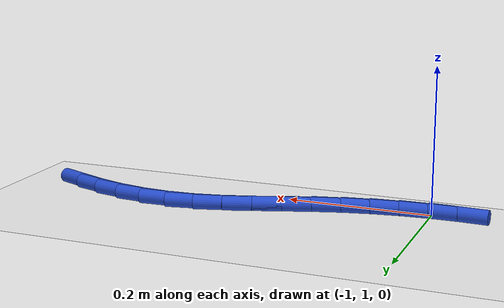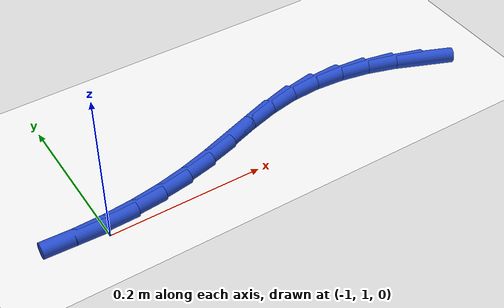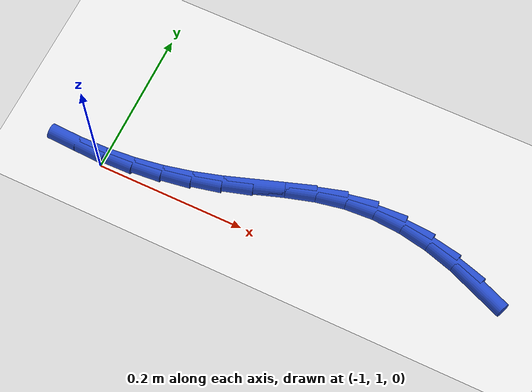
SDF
<sdf version="1.6">
 <world name="default">
  <model name="ground_plane">
   <static>1</static>
   <link name="link">
    <collision name="collision">
     <geometry><plane><normal>0 0 1</normal><size>100 100</size></plane></geometry>
     <surface><friction><ode><mu>100</mu><mu2>50</mu2></ode></friction></surface>
    </collision>
    <visual name="visual">
     <cast_shadows>0</cast_shadows>
     <geometry><plane><normal>0 0 1</normal><size>100 100</size></plane></geometry>
     <material>
      <script><uri>file://media/materials/scripts/gazebo.material</uri><name>Gazebo/WhiteGlow</name></script>
     </material>
    </visual>
   </link>
  </model>
  <model name="line">
   <link name="link_30">
    <pose>-0.4996237857712698 1.0510282119593914 0.01 0 1.57 -0.38338110124971014</pose>
    <collision name="collision">
     <geometry><cylinder><radius>0.01</radius><length>0.08</length></cylinder></geometry>
    </collision>
    <visual name="visual">
     <material>
      <script><name>Gazebo/Blue</name><uri>file://media/materials/scripts/gazebo.material</uri></script>
     </material>
     <geometry><cylinder><radius>0.01</radius><length>0.08</length></cylinder></geometry>
    </visual>
   </link>
   <link name="link_31">
    <pose>-0.5377718935952589 1.0664148136202494 0.01 0 1.57 -0.2894873153356461</pose>
    <collision name="collision">
     <geometry><cylinder><radius>0.01</radius><length>0.08</length></cylinder></geometry>
    </collision>
    <visual name="visual">
     <material>
      <script><name>Gazebo/Blue</name><uri>file://media/materials/scripts/gazebo.material</uri></script>
     </material>
     <geometry><cylinder><radius>0.01</radius><length>0.08</length></cylinder></geometry>
    </visual>
   </link>
   <link name="link_32">
    <pose>-0.5765033535600577 1.0779511545248635 0.01 0 1.57 -0.18484051677864688</pose>
    <collision name="collision">
     <geometry><cylinder><radius>0.01</radius><length>0.08</length></cylinder></geometry>
    </collision>
    <visual name="visual">
     <material>
      <script><name>Gazebo/Blue</name><uri>file://media/materials/scripts/gazebo.material</uri></script>
     </material>
     <geometry><cylinder><radius>0.01</radius><length>0.08</length></cylinder></geometry>
    </visual>
   </link>
   <link name="link_33">
    <pose>-0.6155565878033881 1.0852531242988117 0.01 0 1.57 -0.06850050351292601</pose>
    <collision name="collision">
     <geometry><cylinder><radius>0.01</radius><length>0.08</length></cylinder></geometry>
    </collision>
    <visual name="visual">
     <material>
      <script><name>Gazebo/Blue</name><uri>file://media/materials/scripts/gazebo.material</uri></script>
     </material>
     <geometry><cylinder><radius>0.01</radius><length>0.08</length></cylinder></geometry>
    </visual>
   </link>
   <link name="link_34">
    <pose>-0.6546700184629712 1.0879366125676708 0.01 0 1.57 0.059528184232837594</pose>
    <collision name="collision">
     <geometry><cylinder><radius>0.01</radius><length>0.08</length></cylinder></geometry>
    </collision>
    <visual name="visual">
     <material>
      <script><name>Gazebo/Blue</name><uri>file://media/materials/scripts/gazebo.material</uri></script>
     </material>
     <geometry><cylinder><radius>0.01</radius><length>0.08</length></cylinder></geometry>
    </visual>
   </link>
   <link name="link_35">
    <pose>-0.6935820676765297 1.0856175089570184 0.01 0 1.57 0.19024913804069496</pose>
    <collision name="collision">
     <geometry><cylinder><radius>0.01</radius><length>0.08</length></cylinder></geometry>
    </collision>
    <visual name="visual">
     <material>
      <script><name>Gazebo/Blue</name><uri>file://media/materials/scripts/gazebo.material</uri></script>
     </material>
     <geometry><cylinder><radius>0.01</radius><length>0.08</length></cylinder></geometry>
    </visual>
   </link>
   <link name="link_36">
    <pose>-0.7320831098524112 1.0782030474477207 0.01 0 1.57 0.28374969977899694</pose>
    <collision name="collision">
     <geometry><cylinder><radius>0.01</radius><length>0.08</length></cylinder></geometry>
    </collision>
    <visual name="visual">
     <material>
      <script><name>Gazebo/Blue</name><uri>file://media/materials/scripts/gazebo.material</uri></script>
     </material>
     <geometry><cylinder><radius>0.01</radius><length>0.08</length></cylinder></geometry>
    </visual>
   </link>
   <link name="link_37">
    <pose>-0.7702272615674245 1.0670795079046156 0.01 0 1.57 0.32971492184797635</pose>
    <collision name="collision">
     <geometry><cylinder><radius>0.01</radius><length>0.08</length></cylinder></geometry>
    </collision>
    <visual name="visual">
     <material>
      <script><name>Gazebo/Blue</name><uri>file://media/materials/scripts/gazebo.material</uri></script>
     </material>
     <geometry><cylinder><radius>0.01</radius><length>0.08</length></cylinder></geometry>
    </visual>
   </link>
   <link name="link_38">
    <pose>-0.8081521295117319 1.0541013763547509 0.01 0 1.57 0.3303737932049245</pose>
    <collision name="collision">
     <geometry><cylinder><radius>0.01</radius><length>0.08</length></cylinder></geometry>
    </collision>
    <visual name="visual">
     <material>
      <script><name>Gazebo/Blue</name><uri>file://media/materials/scripts/gazebo.material</uri></script>
     </material>
     <geometry><cylinder><radius>0.01</radius><length>0.08</length></cylinder></geometry>
    </visual>
   </link>
   <link name="link_39">
    <pose>-0.8459953533858356 1.0411233239446331 0.01 0 1.57 0.28673895481645933</pose>
    <collision name="collision">
     <geometry><cylinder><radius>0.01</radius><length>0.08</length></cylinder></geometry>
    </collision>
    <visual name="visual">
     <material>
      <script><name>Gazebo/Blue</name><uri>file://media/materials/scripts/gazebo.material</uri></script>
     </material>
     <geometry><cylinder><radius>0.01</radius><length>0.08</length></cylinder></geometry>
    </visual>
   </link>
   <link name="link_40">
    <pose>-0.8838929302774444 1.0299486630898318 0.01 0 1.57 0.22062755832793557</pose>
    <collision name="collision">
     <geometry><cylinder><radius>0.01</radius><length>0.08</length></cylinder></geometry>
    </collision>
    <visual name="visual">
     <material>
      <script><name>Gazebo/Blue</name><uri>file://media/materials/scripts/gazebo.material</uri></script>
     </material>
     <geometry><cylinder><radius>0.01</radius><length>0.08</length></cylinder></geometry>
    </visual>
   </link>
   <link name="link_41">
    <pose>-0.9219499166320745 1.021413301030985 0.01 0 1.57 0.15342667424321121</pose>
    <collision name="collision">
     <geometry><cylinder><radius>0.01</radius><length>0.08</length></cylinder></geometry>
    </collision>
    <visual name="visual">
     <material>
      <script><name>Gazebo/Blue</name><uri>file://media/materials/scripts/gazebo.material</uri></script>
     </material>
     <geometry><cylinder><radius>0.01</radius><length>0.08</length></cylinder></geometry>
    </visual>
   </link>
   <link name="link_42">
    <pose>-0.9602438094218115 1.015491457101588 0.01 0 1.57 0.08692017934584999</pose>
    <collision name="collision">
     <geometry><cylinder><radius>0.01</radius><length>0.08</length></cylinder></geometry>
    </collision>
    <visual name="visual">
     <material>
      <script><name>Gazebo/Blue</name><uri>file://media/materials/scripts/gazebo.material</uri></script>
     </material>
     <geometry><cylinder><radius>0.01</radius><length>0.08</length></cylinder></geometry>
    </visual>
   </link>
   <link name="link_43">
    <pose>-0.9988511420798942 1.0121272241606731 0.01 0 1.57 0.022114052915809125</pose>
    <collision name="collision">
     <geometry><cylinder><radius>0.01</radius><length>0.08</length></cylinder></geometry>
    </collision>
    <visual name="visual">
     <material>
      <script><name>Gazebo/Blue</name><uri>file://media/materials/scripts/gazebo.material</uri></script>
     </material>
     <geometry><cylinder><radius>0.01</radius><length>0.08</length></cylinder></geometry>
    </visual>
   </link>
   <link name="link_44">
    <pose>-1.0378484480395604 1.0112646950672712 0.01 0 1.57 -0.04009797490723226</pose>
    <collision name="collision">
     <geometry><cylinder><radius>0.01</radius><length>0.08</length></cylinder></geometry>
    </collision>
    <visual name="visual">
     <material>
      <script><name>Gazebo/Blue</name><uri>file://media/materials/scripts/gazebo.material</uri></script>
     </material>
     <geometry><cylinder><radius>0.01</radius><length>0.08</length></cylinder></geometry>
    </visual>
   </link>
  </model>
 </world>
</sdf>
